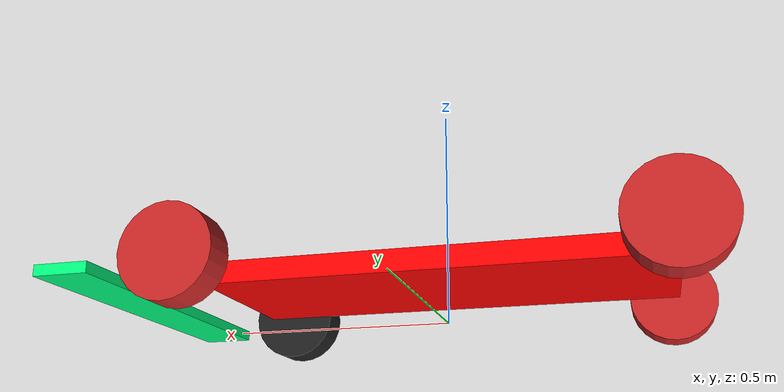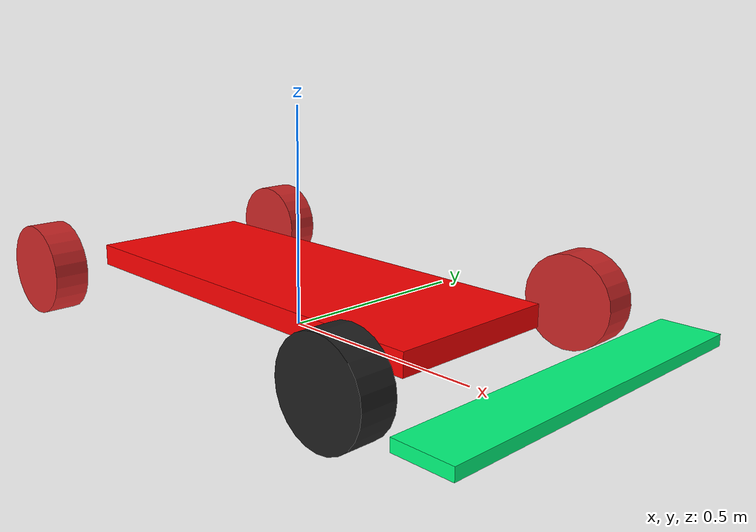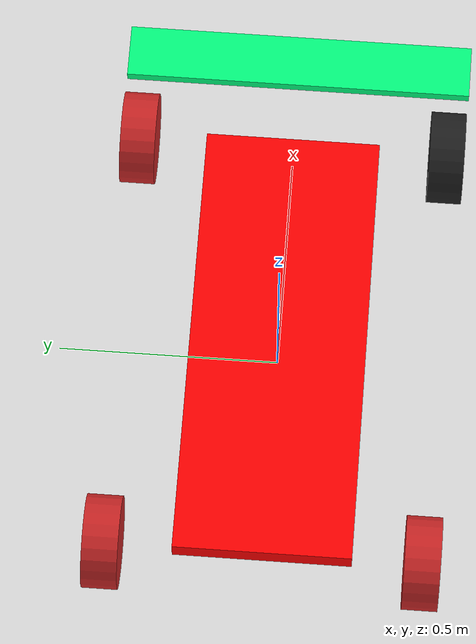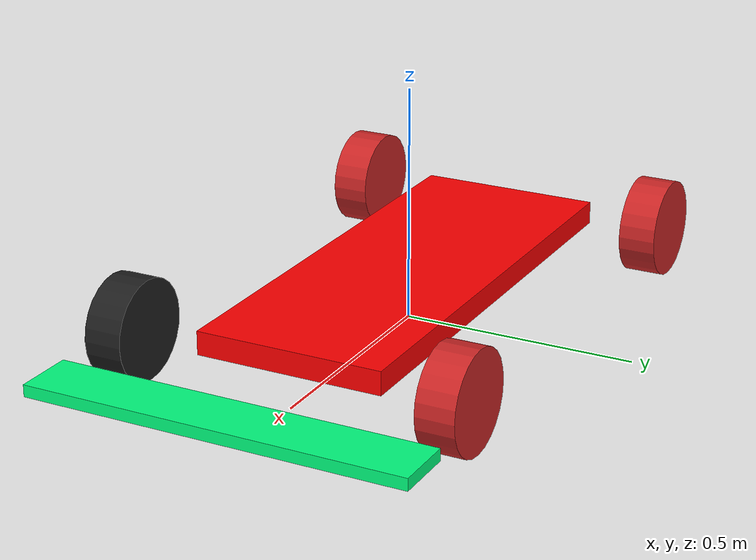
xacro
<?xml version="1.0"?>
<robot xmlns:xacro="http://ros.org/wiki/xacro" name="ackermann_steering_robot">
  <xacro:include filename="$(find autonomous_platform_robot_description_pkg)/src/description/inertia_macros.xacro"/>

  <link name="base_footprint">
  </link>

  <material name="custom_red">
    <ambient rgba="1.0 0.0 0.0 1.0"/> <!-- Red color -->
    <diffuse rgba="1.0 0.0 0.0 1.0"/> <!-- Red color -->
    <specular rgba="0.1 0.1 0.1 1.0"/> <!-- Slight reflection -->
  </material>

   <!-- Define robot constants -->
  <xacro:property name="base_width" value="0.4"/>
  <xacro:property name="base_length" value="1.02"/>
  <xacro:property name="base_height" value="0.05"/>

  <!-- params -->
  <xacro:property name="wheel_radius" value="0.105"/>
  <xacro:property name="wheel_width" value="0.080"/>
  <xacro:property name="y_offset" value="${base_width/2 + 0.155}"/>

  <!-- Gokart front wing parameters - As of now simplified to a slab -->
  <xacro:property name="gokart_frontwing_width" value="0.8"/>
  <xacro:property name="gokart_frontwing_length" value="0.125"/>
  <xacro:property name="gokart_frontwing_height" value="0.025"/>
  <xacro:property name="gokart_frontwing_body_xoff" value="0.16"/>

  <!-- weights -->
  <xacro:property name="wheel_weight" value="1.5"/>
  <xacro:property name="chassi_body_weight" value="50.0"/>
  <xacro:property name="frontwing_weight" value="20.0"/>

  <!-- Base link -->
  <link name="base_link">
    <visual>
      <geometry>
        <box size="${base_length} ${base_width} ${base_height}"/>
      </geometry>
      <material name="Red">
          <color rgba="1.0 0.0 0.0 1.0"/>
        </material>
    </visual>

    <collision>
      <geometry>
        <box size="1 0.5 0.1"/>
      </geometry>
    </collision>

    <xacro:inertial_box mass="${chassi_body_weight}" x="1" y="0.5" z="0.1">
      <origin xyz="0.0 0.0 0.0" rpy="0.0 0.0 0.0"/>
    </xacro:inertial_box>

  </link>

  <joint name="base_joint" type="fixed">
    <parent link="base_footprint"/>
    <child link="base_link"/>
    <origin xyz="0.0 0.0 0.1" rpy="0 0 0"/>
  </joint>

  <!-- Steering joints -->
  <joint name="left_steering_joint" type="revolute">
    <parent link="base_link"/>
    <child link="left_swivel"/>
    <origin xyz="0.5 ${y_offset} 0.0" rpy="0 0  0"/>
    <axis xyz="0 0 1"/> <!-- Rotate around the Y-axis (steering axis) -->
    <limit effort="100" lower="${-pi/5}" upper="${pi/5}" velocity="5" />
  </joint>

  <joint name="right_steering_joint" type="revolute">
    <parent link="base_link"/>
    <child link="right_swivel"/>
    <origin xyz="0.5 ${-y_offset} 0.0" rpy="0 0 0"/>
    <axis xyz="0 0 1"/> <!-- Rotate around the Y-axis (steering axis) -->
    <limit effort="100" lower="${-pi/5}" upper="${pi/5}" velocity="5" />
  </joint>

   <!-- front wheel rotating joints -->
  <joint name="left_steering_rotating_joint" type="continuous">
    <parent link="left_swivel"/>
    <child link="left_wheel_steering"/>
    <origin xyz="0.0 0.0 0.0" rpy="0 0 0"/>
    <axis xyz="0 1 0"/> <!-- Rotate around the Y-axis (drive axis) -->
    <dynamics friction="0.1" damping="0.5" />
    <limit lower="${-pi}" upper="${pi}" effort="0.1" velocity="15" />
  </joint>

  <joint name="right_steering_rotating_joint" type="continuous">
    <parent link="right_swivel"/>
    <child link="right_wheel_steering"/>
    <origin xyz="-0.0 0.0 0.0" rpy="0 0 0"/>
    <axis xyz="0 1 0"/> <!-- Rotate around the Y-axis (drive axis) -->
    <dynamics friction="0.1" damping="0.5" />
    <limit lower="${-pi}" upper="${pi}" effort="0.1" velocity="15" />
  </joint>

  <!-- Drive joints -->
  <joint name="left_drive_joint" type="continuous">
    <parent link="base_link"/>
    <child link="left_wheel"/>
    <origin xyz="-0.5 ${y_offset} 0.0" rpy="0 0 0"/>
    <axis xyz="0 1 0"/> <!-- Rotate around the Y-axis (drive axis) -->
    <dynamics friction="0.1" damping="0.5" />
    <limit lower="${-pi}" upper="${pi}" effort="70" velocity="15" />
  </joint>

  <joint name="right_drive_joint" type="continuous">
    <parent link="base_link"/>
    <child link="right_wheel"/>
    <origin xyz="-0.5 ${-y_offset} 0.0" rpy="0 0 0"/>
    <axis xyz="0 1 0"/> <!-- Rotate around the Y-axis (drive axis) -->
    <dynamics friction="0.1" damping="0.5" />
    <limit lower="${-pi}" upper="${pi}" effort="70" velocity="15" />
  </joint>

  <!-- Steering swiwels -->
  <link name="left_swivel">
    <visual>
      <origin xyz="0 0 0" rpy="${pi/2} 0 0"/>
      <geometry>
        <cylinder radius="0.05" length="0.005"/>
      </geometry>
      <material name="custom_red"/>
    </visual>
    <collision>
      <origin xyz="0 0 0" rpy="${pi/2} 0 0"/>
      <geometry>
        <cylinder radius="0.05" length="0.005"/>
      </geometry>
    </collision>
    <xacro:inertial_cylinder mass="${wheel_weight}" length="0.005" radius="0.05">
      <origin xyz="0 0 0" rpy="${pi/2} 0 0"/>
    </xacro:inertial_cylinder>
  </link>

  <link name="right_swivel">
    <visual>
      <origin xyz="0 0 0" rpy="${pi/2} 0 0"/>
      <geometry>
        <cylinder radius="0.05" length="0.005"/>
      </geometry>
      <material name="custom_red"/>
    </visual>
    <collision>
      <origin xyz="0 0 0" rpy="${pi/2} 0 0"/>
      <geometry>
        <cylinder radius="0.05" length="0.005"/>
      </geometry>
    </collision>
    <xacro:inertial_cylinder mass="${wheel_weight}" length="0.005" radius="0.05">
      <origin xyz="0 0 0" rpy="${pi/2} 0 0"/>
    </xacro:inertial_cylinder>
  </link>

  <!-- Steering wheels -->
  <link name="left_wheel_steering">
    <visual>
      <origin xyz="0 0 0" rpy="${pi/2} 0 0"/>
      <geometry>
        <cylinder radius="${wheel_radius}" length="${wheel_width}"/>
      </geometry>
      <material name="custom_red"/>
    </visual>
    <collision>
      <origin xyz="0 0 0" rpy="${pi/2} 0 0"/>
      <geometry>
        <cylinder radius="${wheel_radius}" length="${wheel_width}"/>
      </geometry>
    </collision>
    <xacro:inertial_cylinder mass="${wheel_weight}" length="${wheel_width}" radius="${wheel_radius}">
      <origin xyz="0 0 0" rpy="${pi/2} 0 0"/>
    </xacro:inertial_cylinder>
  </link>

  <link name="right_wheel_steering">
    <visual>
      <origin xyz="0 0 0" rpy="${pi/2} 0 0"/>
      <geometry>
        <cylinder radius="${wheel_radius}" length="${wheel_width}"/>
      </geometry>
    </visual>
    <collision>
      <origin xyz="0 0 0" rpy="${pi/2} 0 0"/>
      <geometry>
        <cylinder radius="${wheel_radius}" length="${wheel_width}"/>
      </geometry>
    </collision>
    <xacro:inertial_cylinder mass="${wheel_weight}" length="${wheel_width}" radius="${wheel_radius}">
      <origin xyz="0 0 0" rpy="${pi/2} 0 0"/>
    </xacro:inertial_cylinder>

    <gazebo reference="right_wheel_steering">
      <material> Gazebo/Black </material>
    </gazebo>
  </link>

  <!-- Driving wheels -->
  <link name="left_wheel">
    <visual>
      <origin xyz="0 0 0" rpy="${pi/2} 0 0"/>
      <geometry>
        <cylinder radius="${wheel_radius}" length="${wheel_width}"/>
      </geometry>
      <material name="custom_red"/>
    </visual>
    <collision>
      <origin xyz="0 0 0" rpy="${pi/2} 0 0"/>
      <geometry>
        <cylinder radius="${wheel_radius}" length="${wheel_width}"/>
      </geometry>
    </collision>
    <xacro:inertial_cylinder mass="${wheel_weight}" length="${wheel_width}" radius="${wheel_radius}">
      <origin xyz="0 0 0" rpy="${pi/2} 0 0"/>
    </xacro:inertial_cylinder>
  </link>

  <link name="right_wheel">
    <visual>
      <origin xyz="0 0 0" rpy="${pi/2} 0 0"/>
      <geometry>
        <cylinder radius="${wheel_radius}" length="${wheel_width}"/>
      </geometry>
      <material name="custom_red"/>
    </visual>
    <collision>
      <origin xyz="0 0 0" rpy="${pi/2} 0 0"/>
      <geometry>
        <cylinder radius="${wheel_radius}" length="${wheel_width}"/>
      </geometry>
    </collision>
    <xacro:inertial_cylinder mass="${wheel_weight}" length="${wheel_width}" radius="${wheel_radius}">
      <origin xyz="0 0 0" rpy="${pi/2} 0 0"/>
    </xacro:inertial_cylinder>
  </link>

  <!-- Create frontwing link on which one would like to mount future sensors -->
  <link name="gokart_frontwing_link">
      <visual>
        <origin xyz="${gokart_frontwing_length/2} 0 0" rpy="0 0 0"/>
        <geometry>
             <box size="${gokart_frontwing_length} ${gokart_frontwing_width} ${gokart_frontwing_height}"/>
        </geometry>
        <material name="Green">
          <color rgba="0 1.0 0.5 1.0"/>
        </material>
      </visual>

      <collision>
        <origin xyz="${gokart_frontwing_length/2} 0 0" rpy="0 0 0"/>
        <geometry>
             <box size="${gokart_frontwing_length} ${gokart_frontwing_width} ${gokart_frontwing_height}"/>
        </geometry>
      </collision>

      <xacro:inertial_box mass="${frontwing_weight}" x="${gokart_frontwing_length}" y="${gokart_frontwing_width}" z="${gokart_frontwing_height}">
      <origin xyz="0.0 0.0 0.0" rpy="0.0 0.0 0.0"/>
    </xacro:inertial_box>
    </link>

  <!-- Create frontwing joint, mount the frontwing to the gokart body with a fixed joint -->
  <joint name="frontwing_joint" type="fixed">
      <parent link="base_link"/>
      <child link="gokart_frontwing_link"/>
      <origin xyz="${base_length/2+gokart_frontwing_body_xoff} 0 ${-gokart_frontwing_height}" rpy="0 0 0"/>
      <axis xyz="1 0 0"/>
  </joint>

</robot>

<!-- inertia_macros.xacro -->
<robot xmlns:xacro="http://ros.org/wiki/xacro">

 <!-- Taken from https://github.com/joshnewans/articubot_one/blob/d5aa5e9bc9039073c0d8fd7fe426e170be79c087/description/inertial_macros.xacro -->

<!-- Specify some standard inertial calculations https://en.wikipedia.org/wiki/List_of_moments_of_inertia -->
    <!-- These make use of xacro's mathematical functionality -->

    <xacro:macro name="inertial_sphere" params="mass radius *origin">
        <inertial>
            <xacro:insert_block name="origin"/>
            <mass value="${mass}" />
            <inertia ixx="${(2/5) * mass * (radius*radius)}" ixy="0.0" ixz="0.0"
                    iyy="${(2/5) * mass * (radius*radius)}" iyz="0.0"
                    izz="${(2/5) * mass * (radius*radius)}" />
        </inertial>
    </xacro:macro>

    <xacro:macro name="inertial_box" params="mass x y z *origin">
        <inertial>
            <xacro:insert_block name="origin"/>
            <mass value="${mass}" />
            <inertia ixx="${(1/12) * mass * (y*y+z*z)}" ixy="0.0" ixz="0.0"
                    iyy="${(1/12) * mass * (x*x+z*z)}" iyz="0.0"
                    izz="${(1/12) * mass * (x*x+y*y)}" />
        </inertial>
    </xacro:macro>

    <xacro:macro name="inertial_cylinder" params="mass length radius *origin">
        <inertial>
            <xacro:insert_block name="origin"/>
            <mass value="${mass}" />
            <inertia ixx="${(1/12) * mass * (3*radius*radius + length*length)}" ixy="0.0" ixz="0.0"
                    iyy="${(1/12) * mass * (3*radius*radius + length*length)}" iyz="0.0"
                    izz="${(1/2) * mass * (radius*radius)}" />
        </inertial>
    </xacro:macro>

</robot>
